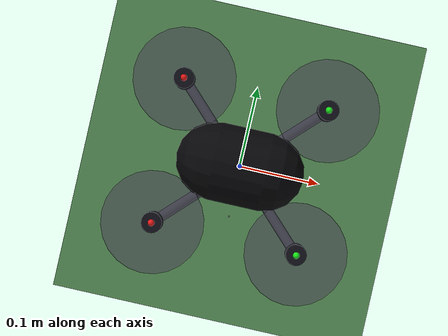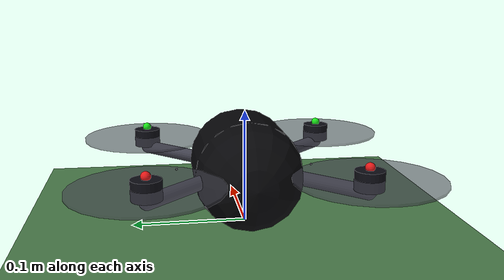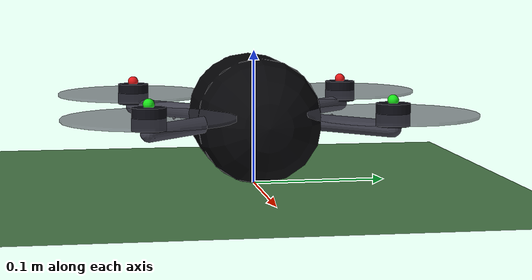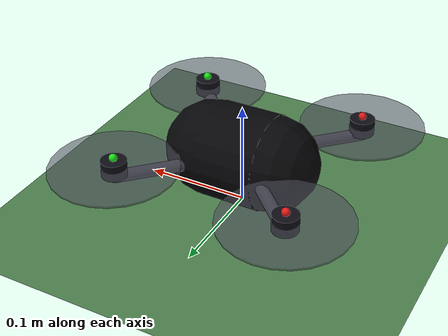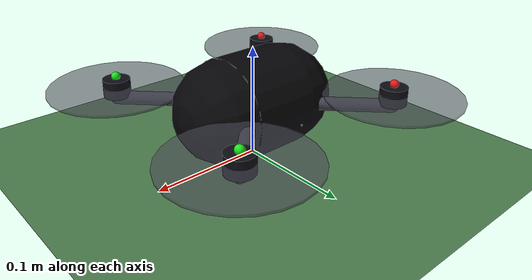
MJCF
<!--
  recon_quadrotor.xml — MuJoCo MJCF for a reconnaissance nano-quadrotor
  Mass: ~0.35 kg  |  Arm length: 0.12 m  |  X-configuration
  Physical constants derived from Crazyflie 2.0-class platforms
-->
<mujoco model="recon_quadrotor">
  <compiler angle="radian" coordinate="local" meshdir="." autolimits="true"/>

  <option timestep="0.001" integrator="implicitfast" gravity="0 0 -9.81"
          viscosity="1.8e-5" density="1.225" wind="0 0 0"
          cone="elliptic" impratio="10"/>

  <visual>
    <global offwidth="1920" offheight="1080"/>
  </visual>

  <default>
    <joint armature="0.0001" damping="0.001"/>
    <geom condim="4" friction="0.8 0.01 0.01" margin="0.001"/>
    <motor ctrllimited="true" ctrlrange="0 1"/>
    <default class="visual">
      <geom contype="0" conaffinity="0" group="1"/>
    </default>
    <default class="collision">
      <geom group="0"/>
    </default>
    <default class="motor">
      <general ctrllimited="true" ctrlrange="0 1"/>
    </default>
  </default>

  <asset>
    <texture name="chassis_tex" type="cube" builtin="flat" rgb1="0.15 0.15 0.18"
             rgb2="0.10 0.10 0.12" width="64" height="64"/>
    <material name="chassis_mat" texture="chassis_tex" specular="0.3" shininess="0.4"
              rgba="0.15 0.15 0.18 1"/>
    <material name="arm_mat" rgba="0.25 0.25 0.30 1" specular="0.2"/>
    <material name="prop_mat" rgba="0.3 0.3 0.35 0.6"/>
    <material name="led_green" rgba="0.1 0.9 0.1 1" emission="0.5"/>
    <material name="led_red" rgba="0.9 0.1 0.1 1" emission="0.5"/>
    <material name="sensor_mat" rgba="0.05 0.05 0.08 1"/>
  </asset>

  <worldbody>
    <!-- ===================== MAIN BODY ===================== -->
    <body name="base_link" pos="0 0 0.05">
      <freejoint name="root"/>

      <!-- Chassis: ellipsoidal fuselage -->
      <geom name="chassis" type="capsule" size="0.045 0.035" fromto="-0.03 0 0 0.03 0 0"
            mass="0.12" material="chassis_mat" class="collision"/>
      <geom name="chassis_visual" type="capsule" size="0.046 0.036"
            fromto="-0.03 0 0 0.03 0 0" material="chassis_mat" class="visual"/>

      <!-- Inertia: approximate as uniform cuboid + arms -->
      <!-- Total mass 0.35 kg, Ixx=Iyy≈0.0011, Izz≈0.0021 kg·m² -->
      <inertial pos="0 0 0" mass="0.35"
                fullinertia="0.0011 0.0011 0.0021 0 0 0"/>

      <!-- ===================== ARM 0 (Front-Right, +X+Y) ===================== -->
      <body name="arm_0" pos="0 0 0">
        <geom name="arm_0_geom" type="capsule" size="0.006 0.085"
              fromto="0 0 0 0.085 0.085 0" mass="0.015" material="arm_mat"/>
        <!-- Motor mount -->
        <body name="motor_0" pos="0.085 0.085 0.01">
          <geom name="motor_0_geom" type="cylinder" size="0.012 0.008"
                mass="0.012" material="sensor_mat"/>
          <!-- Rotor disc (bidirectional thrust) -->
          <geom name="prop_0" type="cylinder" size="0.06 0.001"
                mass="0.003" material="prop_mat" class="visual"/>
          <!-- Thrust site: force applied along +Z of this body -->
          <site name="prop_site_0" pos="0 0 0.01" size="0.001"/>
          <!-- Rotor drag torque site -->
          <site name="rotor_torque_site_0" pos="0 0 0"/>
        </body>
      </body>

      <!-- ===================== ARM 1 (Front-Left, +X-Y) ===================== -->
      <body name="arm_1" pos="0 0 0">
        <geom name="arm_1_geom" type="capsule" size="0.006 0.085"
              fromto="0 0 0 0.085 -0.085 0" mass="0.015" material="arm_mat"/>
        <body name="motor_1" pos="0.085 -0.085 0.01">
          <geom name="motor_1_geom" type="cylinder" size="0.012 0.008"
                mass="0.012" material="sensor_mat"/>
          <geom name="prop_1" type="cylinder" size="0.06 0.001"
                mass="0.003" material="prop_mat" class="visual"/>
          <site name="prop_site_1" pos="0 0 0.01" size="0.001"/>
          <site name="rotor_torque_site_1" pos="0 0 0"/>
        </body>
      </body>

      <!-- ===================== ARM 2 (Rear-Left, -X-Y) ===================== -->
      <body name="arm_2" pos="0 0 0">
        <geom name="arm_2_geom" type="capsule" size="0.006 0.085"
              fromto="0 0 0 -0.085 -0.085 0" mass="0.015" material="arm_mat"/>
        <body name="motor_2" pos="-0.085 -0.085 0.01">
          <geom name="motor_2_geom" type="cylinder" size="0.012 0.008"
                mass="0.012" material="sensor_mat"/>
          <geom name="prop_2" type="cylinder" size="0.06 0.001"
                mass="0.003" material="prop_mat" class="visual"/>
          <site name="prop_site_2" pos="0 0 0.01" size="0.001"/>
          <site name="rotor_torque_site_2" pos="0 0 0"/>
        </body>
      </body>

      <!-- ===================== ARM 3 (Rear-Right, -X+Y) ===================== -->
      <body name="arm_3" pos="0 0 0">
        <geom name="arm_3_geom" type="capsule" size="0.006 0.085"
              fromto="0 0 0 -0.085 0.085 0" mass="0.015" material="arm_mat"/>
        <body name="motor_3" pos="-0.085 0.085 0.01">
          <geom name="motor_3_geom" type="cylinder" size="0.012 0.008"
                mass="0.012" material="sensor_mat"/>
          <geom name="prop_3" type="cylinder" size="0.06 0.001"
                mass="0.003" material="prop_mat" class="visual"/>
          <site name="prop_site_3" pos="0 0 0.01" size="0.001"/>
          <site name="rotor_torque_site_3" pos="0 0 0"/>
        </body>
      </body>

      <!-- ===================== SENSOR SITES ===================== -->
      <!-- IMU site at center of mass -->
      <site name="imu_site" pos="0 0 0" size="0.001"/>

      <!-- Downward rangefinder site (altimeter) -->
      <site name="altimeter_site" pos="0 0 -0.03" size="0.001" zaxis="0 0 -1"/>

      <!-- Forward proximity sensor site -->
      <site name="prox_fwd_site" pos="0.06 0 0" size="0.001" zaxis="1 0 0"/>

      <!-- Left proximity sensor site -->
      <site name="prox_left_site" pos="0 0.06 0" size="0.001" zaxis="0 1 0"/>

      <!-- Right proximity sensor site -->
      <site name="prox_right_site" pos="0 -0.06 0" size="0.001" zaxis="0 -1 0"/>

      <!-- Rear proximity sensor site -->
      <site name="prox_rear_site" pos="-0.06 0 0" size="0.001" zaxis="-1 0 0"/>

      <!-- Forward-facing reconnaissance camera -->
      <camera name="recon_camera" pos="0.05 0 0.02" xyaxes="0 -1 0 0 0 1"
              fovy="70" resolution="640 480"/>

      <!-- Downward-facing camera -->
      <camera name="downward_camera" pos="0 0 -0.03" xyaxes="1 0 0 0 -1 0"
              fovy="90" resolution="320 240"/>

      <!-- LED indicators -->
      <geom name="led_fr" type="sphere" size="0.004" pos="0.085 0.085 0.02"
            material="led_green" class="visual"/>
      <geom name="led_fl" type="sphere" size="0.004" pos="0.085 -0.085 0.02"
            material="led_green" class="visual"/>
      <geom name="led_rl" type="sphere" size="0.004" pos="-0.085 -0.085 0.02"
            material="led_red" class="visual"/>
      <geom name="led_rr" type="sphere" size="0.004" pos="-0.085 0.085 0.02"
            material="led_red" class="visual"/>
    </body>

    <!-- ===================== GROUND ===================== -->
    <geom name="ground" type="plane" size="50 50 0.1" rgba="0.3 0.5 0.3 1"
          material="chassis_mat"/>
    <light name="sun" pos="0 0 50" dir="0 0 -1" diffuse="0.8 0.8 0.8"
           specular="0.3 0.3 0.3" directional="true"/>
    <light name="fill" pos="-10 10 20" dir="1 -1 -2" diffuse="0.3 0.3 0.35"
           directional="true"/>
  </worldbody>

  <!-- ===================== ACTUATORS ===================== -->
  <!--
    Actuator gainprm = 1.5 N per unit ctrl.
    Total mass ≈ 0.47 kg → weight ≈ 4.61 N.
    Hover ctrl ≈ 4.61 / (4 × 1.5) ≈ 0.77.
    Max thrust = 4 × 1.5 = 6.0 N (1.3× weight margin).
  -->
  <actuator>
    <general name="thrust_0" site="prop_site_0"
             gear="0 0 1 0 0 0" gainprm="1.5" ctrllimited="true" ctrlrange="0 1"/>
    <general name="thrust_1" site="prop_site_1"
             gear="0 0 1 0 0 0" gainprm="1.5" ctrllimited="true" ctrlrange="0 1"/>
    <general name="thrust_2" site="prop_site_2"
             gear="0 0 1 0 0 0" gainprm="1.5" ctrllimited="true" ctrlrange="0 1"/>
    <general name="thrust_3" site="prop_site_3"
             gear="0 0 1 0 0 0" gainprm="1.5" ctrllimited="true" ctrlrange="0 1"/>
  </actuator>

  <!-- ===================== SENSOR DEFINITIONS ===================== -->
  <sensor>
    <accelerometer name="sens_acc" site="imu_site"/>
    <gyro name="sens_gyro" site="imu_site"/>
    <rangefinder name="sens_alt" site="altimeter_site"/>
    <rangefinder name="sens_prox_fwd" site="prox_fwd_site"/>
    <rangefinder name="sens_prox_left" site="prox_left_site"/>
    <rangefinder name="sens_prox_right" site="prox_right_site"/>
    <rangefinder name="sens_prox_rear" site="prox_rear_site"/>
    <!-- Frame quaternion for attitude estimation -->
    <framequat name="sens_quat" objtype="body" objname="base_link"/>
    <!-- Angular velocity in world frame -->
    <gyro name="sens_gyro_world" site="imu_site"/>
  </sensor>
</mujoco>
